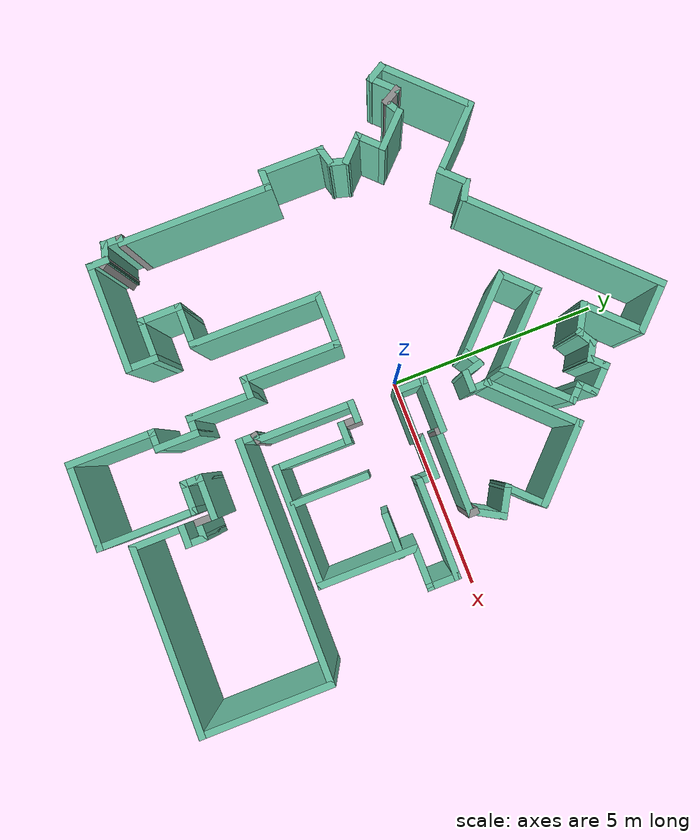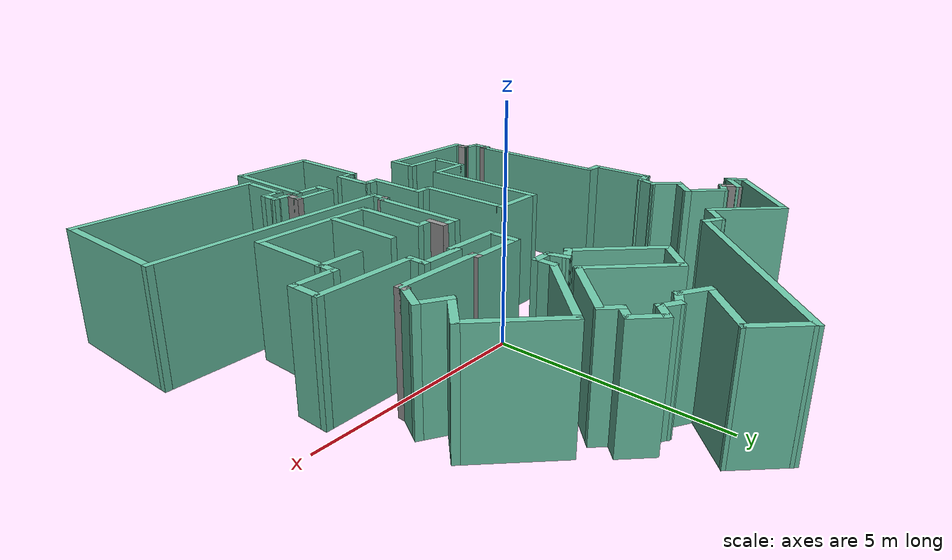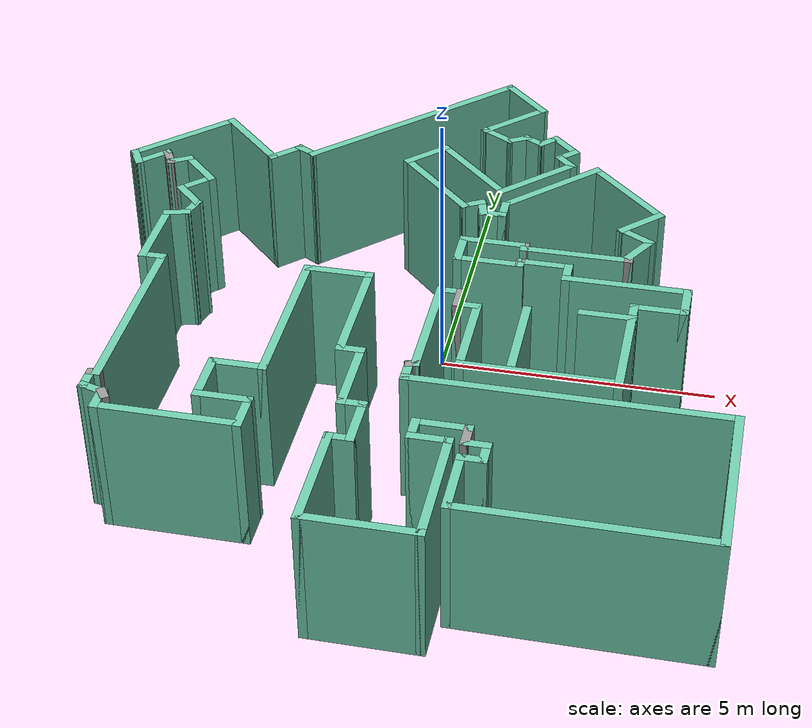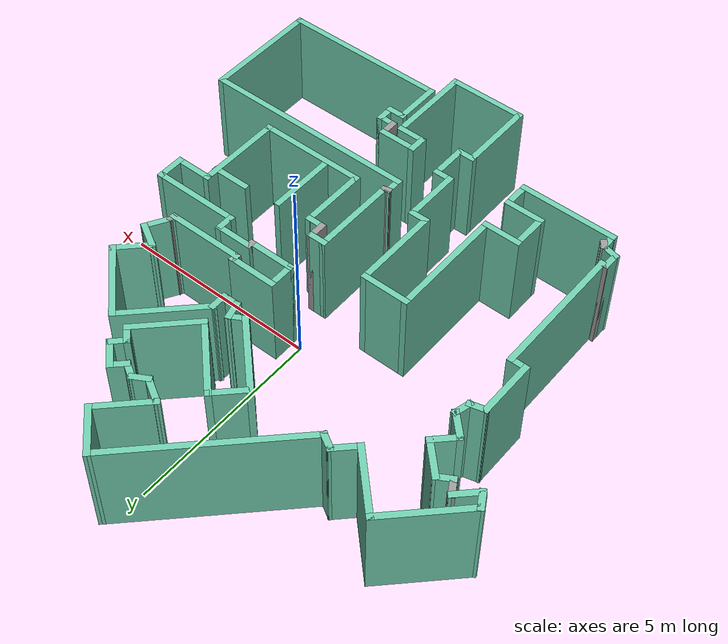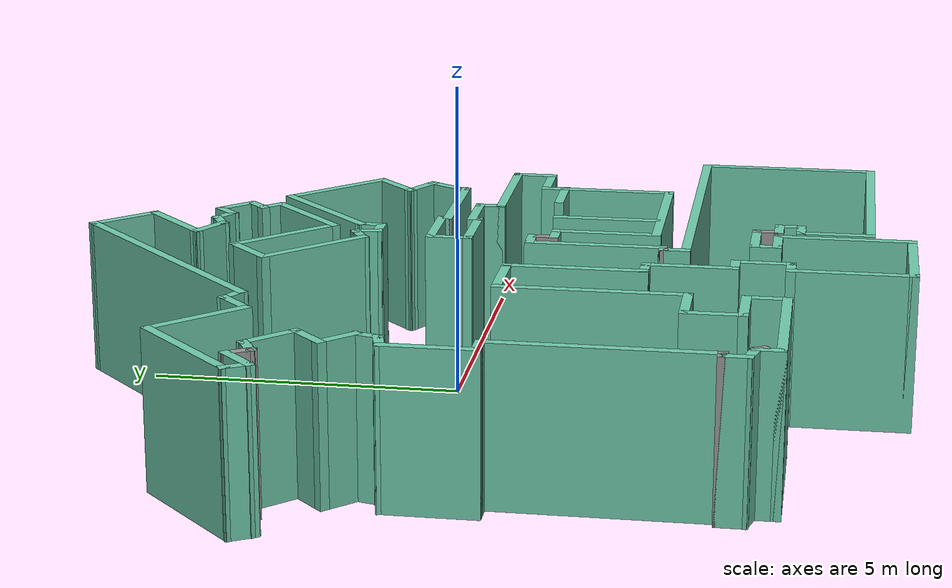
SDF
<sdf version="1.6">
 <model name="map_11">
  <pose>-0.481268 -0.534059 0 0 -0 0</pose>
  <link name="Wall_0">
   <collision name="Wall_0_Collision">
    <geometry><box><size>4.75 0.15 2.5</size></box></geometry>
    <pose>0 0 1.25 0 -0 0</pose>
   </collision>
   <visual name="Wall_0_Visual">
    <pose>0 0 1.25 0 -0 0</pose>
    <geometry><box><size>4.75 0.15 2.5</size></box></geometry>
    <material>
     <script><uri>file://media/materials/scripts/gazebo.material</uri><name>Gazebo/Grey</name></script>
     <ambient>0.435294 0.796078 0.67451 1</ambient>
    </material>
    <meta><layer>0</layer></meta>
   </visual>
   <pose>-0.933367 4.89876 0 0 -0 -2.35619</pose>
  </link>
  <link name="Wall_1">
   <collision name="Wall_1_Collision">
    <geometry><box><size>0.5 0.15 2.5</size></box></geometry>
    <pose>0 0 1.25 0 -0 0</pose>
   </collision>
   <visual name="Wall_1_Visual">
    <pose>0 0 1.25 0 -0 0</pose>
    <geometry><box><size>0.5 0.15 2.5</size></box></geometry>
    <material>
     <script><uri>file://media/materials/scripts/gazebo.material</uri><name>Gazebo/Grey</name></script>
     <ambient>0.435294 0.796078 0.67451 1</ambient>
    </material>
    <meta><layer>0</layer></meta>
   </visual>
   <pose>-2.71127 3.35991 0 0 -0 2.61799</pose>
  </link>
  <link name="Wall_10">
   <collision name="Wall_10_Collision">
    <geometry><box><size>1 0.15 2.5</size></box></geometry>
    <pose>0 0 1.25 0 -0 0</pose>
   </collision>
   <visual name="Wall_10_Visual">
    <pose>0 0 1.25 0 -0 0</pose>
    <geometry><box><size>1 0.15 2.5</size></box></geometry>
    <material>
     <script><uri>file://media/materials/scripts/gazebo.material</uri><name>Gazebo/Grey</name></script>
     <ambient>0.435294 0.796078 0.67451 1</ambient>
    </material>
    <meta><layer>0</layer></meta>
   </visual>
   <pose>-4.52549 2.36212 0 0 -0 -0.785398</pose>
  </link>
  <link name="Wall_100">
   <collision name="Wall_100_Collision">
    <geometry><box><size>1.25445 0.15 2.5</size></box></geometry>
    <pose>0 0 1.25 0 -0 0</pose>
   </collision>
   <visual name="Wall_100_Visual">
    <pose>0 0 1.25 0 -0 0</pose>
    <geometry><box><size>1.25445 0.15 2.5</size></box></geometry>
    <material>
     <script><uri>file://media/materials/scripts/gazebo.material</uri><name>Gazebo/Grey</name></script>
     <ambient>0.435294 0.796078 0.67451 1</ambient>
    </material>
    <meta><layer>0</layer></meta>
   </visual>
   <pose>1.07905 6.13026 0 0 -0 2.34496</pose>
  </link>
  <link name="Wall_102">
   <collision name="Wall_102_Collision">
    <geometry><box><size>1.75 0.15 2.5</size></box></geometry>
    <pose>0 0 1.25 0 -0 0</pose>
   </collision>
   <visual name="Wall_102_Visual">
    <pose>0 0 1.25 0 -0 0</pose>
    <geometry><box><size>1.75 0.15 2.5</size></box></geometry>
    <material>
     <script><uri>file://media/materials/scripts/gazebo.material</uri><name>Gazebo/Grey</name></script>
     <ambient>0.435294 0.796078 0.67451 1</ambient>
    </material>
    <meta><layer>0</layer></meta>
   </visual>
   <pose>2.21384 -1.64657 0 0 -0 1.5708</pose>
  </link>
  <link name="Wall_104">
   <collision name="Wall_104_Collision">
    <geometry><box><size>1 0.15 2.5</size></box></geometry>
    <pose>0 0 1.25 0 -0 0</pose>
   </collision>
   <visual name="Wall_104_Visual">
    <pose>0 0 1.25 0 -0 0</pose>
    <geometry><box><size>1 0.15 2.5</size></box></geometry>
    <material>
     <script><uri>file://media/materials/scripts/gazebo.material</uri><name>Gazebo/Grey</name></script>
     <ambient>0.435294 0.796078 0.67451 1</ambient>
    </material>
    <meta><layer>0</layer></meta>
   </visual>
   <pose>3.5727 -0.757031 0 0 -0 0</pose>
  </link>
  <link name="Wall_11">
   <collision name="Wall_11_Collision">
    <geometry><box><size>0.75 0.15 2.5</size></box></geometry>
    <pose>0 0 1.25 0 -0 0</pose>
   </collision>
   <visual name="Wall_11_Visual">
    <pose>0 0 1.25 0 -0 0</pose>
    <geometry><box><size>0.75 0.15 2.5</size></box></geometry>
    <material>
     <script><uri>file://media/materials/scripts/gazebo.material</uri><name>Gazebo/Grey</name></script>
     <ambient>0.435294 0.796078 0.67451 1</ambient>
    </material>
    <meta><layer>0</layer></meta>
   </visual>
   <pose>-4.4371 1.84947 0 0 -0 -2.35619</pose>
  </link>
  <link name="Wall_12">
   <collision name="Wall_12_Collision">
    <geometry><box><size>0.75 0.15 2.5</size></box></geometry>
    <pose>0 0 1.25 0 -0 0</pose>
   </collision>
   <visual name="Wall_12_Visual">
    <pose>0 0 1.25 0 -0 0</pose>
    <geometry><box><size>0.75 0.15 2.5</size></box></geometry>
    <material>
     <script><uri>file://media/materials/scripts/gazebo.material</uri><name>Gazebo/Grey</name></script>
     <ambient>0.435294 0.796078 0.67451 1</ambient>
    </material>
    <meta><layer>0</layer></meta>
   </visual>
   <pose>-4.4371 1.42521 0 0 -0 -0.785398</pose>
  </link>
  <link name="Wall_13">
   <collision name="Wall_13_Collision">
    <geometry><box><size>0.5 0.15 2.5</size></box></geometry>
    <pose>0 0 1.25 0 -0 0</pose>
   </collision>
   <visual name="Wall_13_Visual">
    <pose>0 0 1.25 0 -0 0</pose>
    <geometry><box><size>0.5 0.15 2.5</size></box></geometry>
    <material>
     <script><uri>file://media/materials/scripts/gazebo.material</uri><name>Gazebo/Grey</name></script>
     <ambient>0.435294 0.796078 0.67451 1</ambient>
    </material>
    <meta><layer>0</layer></meta>
   </visual>
   <pose>-4.27026 1.04404 0 0 -0 -1.8326</pose>
  </link>
  <link name="Wall_14">
   <collision name="Wall_14_Collision">
    <geometry><box><size>0.5 0.15 2.5</size></box></geometry>
    <pose>0 0 1.25 0 -0 0</pose>
   </collision>
   <visual name="Wall_14_Visual">
    <pose>0 0 1.25 0 -0 0</pose>
    <geometry><box><size>0.5 0.15 2.5</size></box></geometry>
    <material>
     <script><uri>file://media/materials/scripts/gazebo.material</uri><name>Gazebo/Grey</name></script>
     <ambient>0.435294 0.796078 0.67451 1</ambient>
    </material>
    <meta><layer>0</layer></meta>
   </visual>
   <pose>-4.48459 0.829708 0 0 -0 -2.87979</pose>
  </link>
  <link name="Wall_15">
   <collision name="Wall_15_Collision">
    <geometry><box><size>1.5 0.15 2.5</size></box></geometry>
    <pose>0 0 1.25 0 -0 0</pose>
   </collision>
   <visual name="Wall_15_Visual">
    <pose>0 0 1.25 0 -0 0</pose>
    <geometry><box><size>1.5 0.15 2.5</size></box></geometry>
    <material>
     <script><uri>file://media/materials/scripts/gazebo.material</uri><name>Gazebo/Grey</name></script>
     <ambient>0.435294 0.796078 0.67451 1</ambient>
    </material>
    <meta><layer>0</layer></meta>
   </visual>
   <pose>-4.65363 0.109414 0 0 -0 -1.5708</pose>
  </link>
  <link name="Wall_16">
   <collision name="Wall_16_Collision">
    <geometry><box><size>0.5 0.15 2.5</size></box></geometry>
    <pose>0 0 1.25 0 -0 0</pose>
   </collision>
   <visual name="Wall_16_Visual">
    <pose>0 0 1.25 0 -0 0</pose>
    <geometry><box><size>0.5 0.15 2.5</size></box></geometry>
    <material>
     <script><uri>file://media/materials/scripts/gazebo.material</uri><name>Gazebo/Grey</name></script>
     <ambient>0.435294 0.796078 0.67451 1</ambient>
    </material>
    <meta><layer>0</layer></meta>
   </visual>
   <pose>-4.47863 -0.565586 0 0 -0 0</pose>
  </link>
  <link name="Wall_17">
   <collision name="Wall_17_Collision">
    <geometry><box><size>3.5 0.15 2.5</size></box></geometry>
    <pose>0 0 1.25 0 -0 0</pose>
   </collision>
   <visual name="Wall_17_Visual">
    <pose>0 0 1.25 0 -0 0</pose>
    <geometry><box><size>3.5 0.15 2.5</size></box></geometry>
    <material>
     <script><uri>file://media/materials/scripts/gazebo.material</uri><name>Gazebo/Grey</name></script>
     <ambient>0.435294 0.796078 0.67451 1</ambient>
    </material>
    <meta><layer>0</layer></meta>
   </visual>
   <pose>-4.30363 -2.24059 0 0 -0 -1.5708</pose>
  </link>
  <link name="Wall_18">
   <collision name="Wall_18_Collision">
    <geometry><box><size>0.25 0.15 2.5</size></box></geometry>
    <pose>0 0 1.25 0 -0 0</pose>
   </collision>
   <visual name="Wall_18_Visual">
    <pose>0 0 1.25 0 -0 0</pose>
    <geometry><box><size>0.25 0.15 2.5</size></box></geometry>
    <material>
     <script><uri>file://media/materials/scripts/gazebo.material</uri><name>Gazebo/Grey</name></script>
     <ambient>1 1 1 1</ambient>
    </material>
    <meta><layer>0</layer></meta>
   </visual>
   <pose>-4.35363 -3.91559 0 0 -0 3.14159</pose>
  </link>
  <link name="Wall_19">
   <collision name="Wall_19_Collision">
    <geometry><box><size>0.5 0.15 2.5</size></box></geometry>
    <pose>0 0 1.25 0 -0 0</pose>
   </collision>
   <visual name="Wall_19_Visual">
    <pose>0 0 1.25 0 -0 0</pose>
    <geometry><box><size>0.5 0.15 2.5</size></box></geometry>
    <material>
     <script><uri>file://media/materials/scripts/gazebo.material</uri><name>Gazebo/Grey</name></script>
     <ambient>0.435294 0.796078 0.67451 1</ambient>
    </material>
    <meta><layer>0</layer></meta>
   </visual>
   <pose>-4.40363 -4.09059 0 0 -0 -1.5708</pose>
  </link>
  <link name="Wall_2">
   <collision name="Wall_2_Collision">
    <geometry><box><size>0.75 0.15 2.5</size></box></geometry>
    <pose>0 0 1.25 0 -0 0</pose>
   </collision>
   <visual name="Wall_2_Visual">
    <pose>0 0 1.25 0 -0 0</pose>
    <geometry><box><size>0.75 0.15 2.5</size></box></geometry>
    <material>
     <script><uri>file://media/materials/scripts/gazebo.material</uri><name>Gazebo/Grey</name></script>
     <ambient>0.435294 0.796078 0.67451 1</ambient>
    </material>
    <meta><layer>0</layer></meta>
   </visual>
   <pose>-3.07495 3.23528 0 0 -0 -2.35619</pose>
  </link>
  <link name="Wall_20">
   <collision name="Wall_20_Collision">
    <geometry><box><size>0.5 0.15 2.5</size></box></geometry>
    <pose>0 0 1.25 0 -0 0</pose>
   </collision>
   <visual name="Wall_20_Visual">
    <pose>0 0 1.25 0 -0 0</pose>
    <geometry><box><size>0.5 0.15 2.5</size></box></geometry>
    <material>
     <script><uri>file://media/materials/scripts/gazebo.material</uri><name>Gazebo/Grey</name></script>
     <ambient>0.435294 0.796078 0.67451 1</ambient>
    </material>
    <meta><layer>0</layer></meta>
   </visual>
   <pose>-4.23459 -4.31088 0 0 -0 -0.261799</pose>
  </link>
  <link name="Wall_21">
   <collision name="Wall_21_Collision">
    <geometry><box><size>0.271718 0.15 2.5</size></box></geometry>
    <pose>0 0 1.25 0 -0 0</pose>
   </collision>
   <visual name="Wall_21_Visual">
    <pose>0 0 1.25 0 -0 0</pose>
    <geometry><box><size>0.271718 0.15 2.5</size></box></geometry>
    <material>
     <script><uri>file://media/materials/scripts/gazebo.material</uri><name>Gazebo/Grey</name></script>
     <ambient>1 1 1 1</ambient>
    </material>
    <meta><layer>0</layer></meta>
   </visual>
   <pose>-4.03086 -4.40617 0 0 -0 -0.964164</pose>
  </link>
  <link name="Wall_27">
   <collision name="Wall_27_Collision">
    <geometry><box><size>0.5 0.15 2.5</size></box></geometry>
    <pose>0 0 1.25 0 -0 0</pose>
   </collision>
   <visual name="Wall_27_Visual">
    <pose>0 0 1.25 0 -0 0</pose>
    <geometry><box><size>0.5 0.15 2.5</size></box></geometry>
    <material>
     <script><uri>file://media/materials/scripts/gazebo.material</uri><name>Gazebo/Grey</name></script>
     <ambient>0.435294 0.796078 0.67451 1</ambient>
    </material>
    <meta><layer>0</layer></meta>
   </visual>
   <pose>-4.06555 -4.53117 0 0 -0 -1.5708</pose>
  </link>
  <link name="Wall_28">
   <collision name="Wall_28_Collision">
    <geometry><box><size>2.5 0.15 2.5</size></box></geometry>
    <pose>0 0 1.25 0 -0 0</pose>
   </collision>
   <visual name="Wall_28_Visual">
    <pose>0 0 1.25 0 -0 0</pose>
    <geometry><box><size>2.5 0.15 2.5</size></box></geometry>
    <material>
     <script><uri>file://media/materials/scripts/gazebo.material</uri><name>Gazebo/Grey</name></script>
     <ambient>0.435294 0.796078 0.67451 1</ambient>
    </material>
    <meta><layer>0</layer></meta>
   </visual>
   <pose>-2.89055 -4.70617 0 0 -0 0</pose>
  </link>
  <link name="Wall_29">
   <collision name="Wall_29_Collision">
    <geometry><box><size>0.75 0.15 2.5</size></box></geometry>
    <pose>0 0 1.25 0 -0 0</pose>
   </collision>
   <visual name="Wall_29_Visual">
    <pose>0 0 1.25 0 -0 0</pose>
    <geometry><box><size>0.75 0.15 2.5</size></box></geometry>
    <material>
     <script><uri>file://media/materials/scripts/gazebo.material</uri><name>Gazebo/Grey</name></script>
     <ambient>0.435294 0.796078 0.67451 1</ambient>
    </material>
    <meta><layer>0</layer></meta>
   </visual>
   <pose>-1.71555 -4.40617 0 0 -0 1.5708</pose>
  </link>
  <link name="Wall_3">
   <collision name="Wall_3_Collision">
    <geometry><box><size>1.75 0.15 2.5</size></box></geometry>
    <pose>0 0 1.25 0 -0 0</pose>
   </collision>
   <visual name="Wall_3_Visual">
    <pose>0 0 1.25 0 -0 0</pose>
    <geometry><box><size>1.75 0.15 2.5</size></box></geometry>
    <material>
     <script><uri>file://media/materials/scripts/gazebo.material</uri><name>Gazebo/Grey</name></script>
     <ambient>0.435294 0.796078 0.67451 1</ambient>
    </material>
    <meta><layer>0</layer></meta>
   </visual>
   <pose>-3.85277 3.58884 0 0 -0 2.35619</pose>
  </link>
  <link name="Wall_30">
   <collision name="Wall_30_Collision">
    <geometry><box><size>1 0.15 2.5</size></box></geometry>
    <pose>0 0 1.25 0 -0 0</pose>
   </collision>
   <visual name="Wall_30_Visual">
    <pose>0 0 1.25 0 -0 0</pose>
    <geometry><box><size>1 0.15 2.5</size></box></geometry>
    <material>
     <script><uri>file://media/materials/scripts/gazebo.material</uri><name>Gazebo/Grey</name></script>
     <ambient>0.435294 0.796078 0.67451 1</ambient>
    </material>
    <meta><layer>0</layer></meta>
   </visual>
   <pose>-2.14055 -4.10617 0 0 -0 3.14159</pose>
  </link>
  <link name="Wall_31">
   <collision name="Wall_31_Collision">
    <geometry><box><size>1 0.15 2.5</size></box></geometry>
    <pose>0 0 1.25 0 -0 0</pose>
   </collision>
   <visual name="Wall_31_Visual">
    <pose>0 0 1.25 0 -0 0</pose>
    <geometry><box><size>1 0.15 2.5</size></box></geometry>
    <material>
     <script><uri>file://media/materials/scripts/gazebo.material</uri><name>Gazebo/Grey</name></script>
     <ambient>0.435294 0.796078 0.67451 1</ambient>
    </material>
    <meta><layer>0</layer></meta>
   </visual>
   <pose>-2.56555 -3.68117 0 0 -0 1.5708</pose>
  </link>
  <link name="Wall_32">
   <collision name="Wall_32_Collision">
    <geometry><box><size>1 0.15 2.5</size></box></geometry>
    <pose>0 0 1.25 0 -0 0</pose>
   </collision>
   <visual name="Wall_32_Visual">
    <pose>0 0 1.25 0 -0 0</pose>
    <geometry><box><size>1 0.15 2.5</size></box></geometry>
    <material>
     <script><uri>file://media/materials/scripts/gazebo.material</uri><name>Gazebo/Grey</name></script>
     <ambient>0.435294 0.796078 0.67451 1</ambient>
    </material>
    <meta><layer>0</layer></meta>
   </visual>
   <pose>-2.14055 -3.25617 0 0 -0 0</pose>
  </link>
  <link name="Wall_33">
   <collision name="Wall_33_Collision">
    <geometry><box><size>3 0.15 2.5</size></box></geometry>
    <pose>0 0 1.25 0 -0 0</pose>
   </collision>
   <visual name="Wall_33_Visual">
    <pose>0 0 1.25 0 -0 0</pose>
    <geometry><box><size>3 0.15 2.5</size></box></geometry>
    <material>
     <script><uri>file://media/materials/scripts/gazebo.material</uri><name>Gazebo/Grey</name></script>
     <ambient>0.435294 0.796078 0.67451 1</ambient>
    </material>
    <meta><layer>0</layer></meta>
   </visual>
   <pose>-1.71555 -1.83117 0 0 -0 1.5708</pose>
  </link>
  <link name="Wall_34">
   <collision name="Wall_34_Collision">
    <geometry><box><size>1.25 0.15 2.5</size></box></geometry>
    <pose>0 0 1.25 0 -0 0</pose>
   </collision>
   <visual name="Wall_34_Visual">
    <pose>0 0 1.25 0 -0 0</pose>
    <geometry><box><size>1.25 0.15 2.5</size></box></geometry>
    <material>
     <script><uri>file://media/materials/scripts/gazebo.material</uri><name>Gazebo/Grey</name></script>
     <ambient>0.435294 0.796078 0.67451 1</ambient>
    </material>
    <meta><layer>0</layer></meta>
   </visual>
   <pose>-1.16555 -0.406172 0 0 -0 0</pose>
  </link>
  <link name="Wall_35">
   <collision name="Wall_35_Collision">
    <geometry><box><size>2.25 0.15 2.5</size></box></geometry>
    <pose>0 0 1.25 0 -0 0</pose>
   </collision>
   <visual name="Wall_35_Visual">
    <pose>0 0 1.25 0 -0 0</pose>
    <geometry><box><size>2.25 0.15 2.5</size></box></geometry>
    <material>
     <script><uri>file://media/materials/scripts/gazebo.material</uri><name>Gazebo/Grey</name></script>
     <ambient>0.435294 0.796078 0.67451 1</ambient>
    </material>
    <meta><layer>0</layer></meta>
   </visual>
   <pose>-0.615553 -1.45617 0 0 -0 -1.5708</pose>
  </link>
  <link name="Wall_36">
   <collision name="Wall_36_Collision">
    <geometry><box><size>0.5 0.15 2.5</size></box></geometry>
    <pose>0 0 1.25 0 -0 0</pose>
   </collision>
   <visual name="Wall_36_Visual">
    <pose>0 0 1.25 0 -0 0</pose>
    <geometry><box><size>0.5 0.15 2.5</size></box></geometry>
    <material>
     <script><uri>file://media/materials/scripts/gazebo.material</uri><name>Gazebo/Grey</name></script>
     <ambient>0.435294 0.796078 0.67451 1</ambient>
    </material>
    <meta><layer>0</layer></meta>
   </visual>
   <pose>-0.440553 -2.50617 0 0 -0 0</pose>
  </link>
  <link name="Wall_37">
   <collision name="Wall_37_Collision">
    <geometry><box><size>1.5 0.15 2.5</size></box></geometry>
    <pose>0 0 1.25 0 -0 0</pose>
   </collision>
   <visual name="Wall_37_Visual">
    <pose>0 0 1.25 0 -0 0</pose>
    <geometry><box><size>1.5 0.15 2.5</size></box></geometry>
    <material>
     <script><uri>file://media/materials/scripts/gazebo.material</uri><name>Gazebo/Grey</name></script>
     <ambient>0.435294 0.796078 0.67451 1</ambient>
    </material>
    <meta><layer>0</layer></meta>
   </visual>
   <pose>-0.265553 -3.18117 0 0 -0 -1.5708</pose>
  </link>
  <link name="Wall_38">
   <collision name="Wall_38_Collision">
    <geometry><box><size>0.5 0.15 2.5</size></box></geometry>
    <pose>0 0 1.25 0 -0 0</pose>
   </collision>
   <visual name="Wall_38_Visual">
    <pose>0 0 1.25 0 -0 0</pose>
    <geometry><box><size>0.5 0.15 2.5</size></box></geometry>
    <material>
     <script><uri>file://media/materials/scripts/gazebo.material</uri><name>Gazebo/Grey</name></script>
     <ambient>0.435294 0.796078 0.67451 1</ambient>
    </material>
    <meta><layer>0</layer></meta>
   </visual>
   <pose>-0.090554 -3.85617 0 0 -0 0</pose>
  </link>
  <link name="Wall_39">
   <collision name="Wall_39_Collision">
    <geometry><box><size>1 0.15 2.5</size></box></geometry>
    <pose>0 0 1.25 0 -0 0</pose>
   </collision>
   <visual name="Wall_39_Visual">
    <pose>0 0 1.25 0 -0 0</pose>
    <geometry><box><size>1 0.15 2.5</size></box></geometry>
    <material>
     <script><uri>file://media/materials/scripts/gazebo.material</uri><name>Gazebo/Grey</name></script>
     <ambient>0.435294 0.796078 0.67451 1</ambient>
    </material>
    <meta><layer>0</layer></meta>
   </visual>
   <pose>0.084447 -4.28117 0 0 -0 -1.5708</pose>
  </link>
  <link name="Wall_4">
   <collision name="Wall_4_Collision">
    <geometry><box><size>2.25 0.15 2.5</size></box></geometry>
    <pose>0 0 1.25 0 -0 0</pose>
   </collision>
   <visual name="Wall_4_Visual">
    <pose>0 0 1.25 0 -0 0</pose>
    <geometry><box><size>2.25 0.15 2.5</size></box></geometry>
    <material>
     <script><uri>file://media/materials/scripts/gazebo.material</uri><name>Gazebo/Grey</name></script>
     <ambient>0.435294 0.796078 0.67451 1</ambient>
    </material>
    <meta><layer>0</layer></meta>
   </visual>
   <pose>-5.16092 3.41206 0 0 -0 -2.35619</pose>
  </link>
  <link name="Wall_40">
   <collision name="Wall_40_Collision">
    <geometry><box><size>0.5 0.15 2.5</size></box></geometry>
    <pose>0 0 1.25 0 -0 0</pose>
   </collision>
   <visual name="Wall_40_Visual">
    <pose>0 0 1.25 0 -0 0</pose>
    <geometry><box><size>0.5 0.15 2.5</size></box></geometry>
    <material>
     <script><uri>file://media/materials/scripts/gazebo.material</uri><name>Gazebo/Grey</name></script>
     <ambient>0.435294 0.796078 0.67451 1</ambient>
    </material>
    <meta><layer>0</layer></meta>
   </visual>
   <pose>-0.090554 -4.70617 0 0 -0 3.14159</pose>
  </link>
  <link name="Wall_41">
   <collision name="Wall_41_Collision">
    <geometry><box><size>2 0.15 2.5</size></box></geometry>
    <pose>0 0 1.25 0 -0 0</pose>
   </collision>
   <visual name="Wall_41_Visual">
    <pose>0 0 1.25 0 -0 0</pose>
    <geometry><box><size>2 0.15 2.5</size></box></geometry>
    <material>
     <script><uri>file://media/materials/scripts/gazebo.material</uri><name>Gazebo/Grey</name></script>
     <ambient>0.435294 0.796078 0.67451 1</ambient>
    </material>
    <meta><layer>0</layer></meta>
   </visual>
   <pose>-0.265553 -5.63117 0 0 -0 -1.5708</pose>
  </link>
  <link name="Wall_42">
   <collision name="Wall_42_Collision">
    <geometry><box><size>2 0.15 2.5</size></box></geometry>
    <pose>0 0 1.25 0 -0 0</pose>
   </collision>
   <visual name="Wall_42_Visual">
    <pose>0 0 1.25 0 -0 0</pose>
    <geometry><box><size>2 0.15 2.5</size></box></geometry>
    <material>
     <script><uri>file://media/materials/scripts/gazebo.material</uri><name>Gazebo/Grey</name></script>
     <ambient>0.435294 0.796078 0.67451 1</ambient>
    </material>
    <meta><layer>0</layer></meta>
   </visual>
   <pose>0.659447 -6.55617 0 0 -0 0</pose>
  </link>
  <link name="Wall_43">
   <collision name="Wall_43_Collision">
    <geometry><box><size>2.25 0.15 2.5</size></box></geometry>
    <pose>0 0 1.25 0 -0 0</pose>
   </collision>
   <visual name="Wall_43_Visual">
    <pose>0 0 1.25 0 -0 0</pose>
    <geometry><box><size>2.25 0.15 2.5</size></box></geometry>
    <material>
     <script><uri>file://media/materials/scripts/gazebo.material</uri><name>Gazebo/Grey</name></script>
     <ambient>0.435294 0.796078 0.67451 1</ambient>
    </material>
    <meta><layer>0</layer></meta>
   </visual>
   <pose>1.58445 -5.50617 0 0 -0 1.5708</pose>
  </link>
  <link name="Wall_44">
   <collision name="Wall_44_Collision">
    <geometry><box><size>0.75 0.15 2.5</size></box></geometry>
    <pose>0 0 1.25 0 -0 0</pose>
   </collision>
   <visual name="Wall_44_Visual">
    <pose>0 0 1.25 0 -0 0</pose>
    <geometry><box><size>0.75 0.15 2.5</size></box></geometry>
    <material>
     <script><uri>file://media/materials/scripts/gazebo.material</uri><name>Gazebo/Grey</name></script>
     <ambient>0.435294 0.796078 0.67451 1</ambient>
    </material>
    <meta><layer>0</layer></meta>
   </visual>
   <pose>1.28445 -4.45617 0 0 -0 3.14159</pose>
  </link>
  <link name="Wall_45">
   <collision name="Wall_45_Collision">
    <geometry><box><size>0.5 0.15 2.5</size></box></geometry>
    <pose>0 0 1.25 0 -0 0</pose>
   </collision>
   <visual name="Wall_45_Visual">
    <pose>0 0 1.25 0 -0 0</pose>
    <geometry><box><size>0.5 0.15 2.5</size></box></geometry>
    <material>
     <script><uri>file://media/materials/scripts/gazebo.material</uri><name>Gazebo/Grey</name></script>
     <ambient>0.435294 0.796078 0.67451 1</ambient>
    </material>
    <meta><layer>0</layer></meta>
   </visual>
   <pose>0.984447 -4.28117 0 0 -0 1.5708</pose>
  </link>
  <link name="Wall_46">
   <collision name="Wall_46_Collision">
    <geometry><box><size>1 0.15 2.5</size></box></geometry>
    <pose>0 0 1.25 0 -0 0</pose>
   </collision>
   <visual name="Wall_46_Visual">
    <pose>0 0 1.25 0 -0 0</pose>
    <geometry><box><size>1 0.15 2.5</size></box></geometry>
    <material>
     <script><uri>file://media/materials/scripts/gazebo.material</uri><name>Gazebo/Grey</name></script>
     <ambient>0.435294 0.796078 0.67451 1</ambient>
    </material>
    <meta><layer>0</layer></meta>
   </visual>
   <pose>1.40945 -4.10617 0 0 -0 0</pose>
  </link>
  <link name="Wall_47">
   <collision name="Wall_47_Collision">
    <geometry><box><size>0.5 0.15 2.5</size></box></geometry>
    <pose>0 0 1.25 0 -0 0</pose>
   </collision>
   <visual name="Wall_47_Visual">
    <pose>0 0 1.25 0 -0 0</pose>
    <geometry><box><size>0.5 0.15 2.5</size></box></geometry>
    <material>
     <script><uri>file://media/materials/scripts/gazebo.material</uri><name>Gazebo/Grey</name></script>
     <ambient>1 1 1 1</ambient>
    </material>
    <meta><layer>0</layer></meta>
   </visual>
   <pose>1.83445 -4.28117 0 0 -0 -1.5708</pose>
  </link>
  <link name="Wall_48">
   <collision name="Wall_48_Collision">
    <geometry><box><size>0.5 0.15 2.5</size></box></geometry>
    <pose>0 0 1.25 0 -0 0</pose>
   </collision>
   <visual name="Wall_48_Visual">
    <pose>0 0 1.25 0 -0 0</pose>
    <geometry><box><size>0.5 0.15 2.5</size></box></geometry>
    <material>
     <script><uri>file://media/materials/scripts/gazebo.material</uri><name>Gazebo/Grey</name></script>
     <ambient>0.435294 0.796078 0.67451 1</ambient>
    </material>
    <meta><layer>0</layer></meta>
   </visual>
   <pose>2.00945 -4.45617 0 0 -0 0</pose>
  </link>
  <link name="Wall_49">
   <collision name="Wall_49_Collision">
    <geometry><box><size>0.5 0.15 2.5</size></box></geometry>
    <pose>0 0 1.25 0 -0 0</pose>
   </collision>
   <visual name="Wall_49_Visual">
    <pose>0 0 1.25 0 -0 0</pose>
    <geometry><box><size>0.5 0.15 2.5</size></box></geometry>
    <material>
     <script><uri>file://media/materials/scripts/gazebo.material</uri><name>Gazebo/Grey</name></script>
     <ambient>0.435294 0.796078 0.67451 1</ambient>
    </material>
    <meta><layer>0</layer></meta>
   </visual>
   <pose>2.18445 -4.63117 0 0 -0 -1.5708</pose>
  </link>
  <link name="Wall_5">
   <collision name="Wall_5_Collision">
    <geometry><box><size>0.5 0.15 2.5</size></box></geometry>
    <pose>0 0 1.25 0 -0 0</pose>
   </collision>
   <visual name="Wall_5_Visual">
    <pose>0 0 1.25 0 -0 0</pose>
    <geometry><box><size>0.5 0.15 2.5</size></box></geometry>
    <material>
     <script><uri>file://media/materials/scripts/gazebo.material</uri><name>Gazebo/Grey</name></script>
     <ambient>0.435294 0.796078 0.67451 1</ambient>
    </material>
    <meta><layer>0</layer></meta>
   </visual>
   <pose>-5.81588 2.51804 0 0 -0 -1.0472</pose>
  </link>
  <link name="Wall_50">
   <collision name="Wall_50_Collision">
    <geometry><box><size>0.5 0.15 2.5</size></box></geometry>
    <pose>0 0 1.25 0 -0 0</pose>
   </collision>
   <visual name="Wall_50_Visual">
    <pose>0 0 1.25 0 -0 0</pose>
    <geometry><box><size>0.5 0.15 2.5</size></box></geometry>
    <material>
     <script><uri>file://media/materials/scripts/gazebo.material</uri><name>Gazebo/Grey</name></script>
     <ambient>0.435294 0.796078 0.67451 1</ambient>
    </material>
    <meta><layer>0</layer></meta>
   </visual>
   <pose>2.00945 -4.80617 0 0 -0 3.14159</pose>
  </link>
  <link name="Wall_51">
   <collision name="Wall_51_Collision">
    <geometry><box><size>1.25 0.15 2.5</size></box></geometry>
    <pose>0 0 1.25 0 -0 0</pose>
   </collision>
   <visual name="Wall_51_Visual">
    <pose>0 0 1.25 0 -0 0</pose>
    <geometry><box><size>1.25 0.15 2.5</size></box></geometry>
    <material>
     <script><uri>file://media/materials/scripts/gazebo.material</uri><name>Gazebo/Grey</name></script>
     <ambient>0.435294 0.796078 0.67451 1</ambient>
    </material>
    <meta><layer>0</layer></meta>
   </visual>
   <pose>1.83445 -5.35617 0 0 -0 -1.5708</pose>
  </link>
  <link name="Wall_52">
   <collision name="Wall_52_Collision">
    <geometry><box><size>4.25 0.15 2.5</size></box></geometry>
    <pose>0 0 1.25 0 -0 0</pose>
   </collision>
   <visual name="Wall_52_Visual">
    <pose>0 0 1.25 0 -0 0</pose>
    <geometry><box><size>4.25 0.15 2.5</size></box></geometry>
    <material>
     <script><uri>file://media/materials/scripts/gazebo.material</uri><name>Gazebo/Grey</name></script>
     <ambient>0.435294 0.796078 0.67451 1</ambient>
    </material>
    <meta><layer>0</layer></meta>
   </visual>
   <pose>3.88445 -5.90617 0 0 -0 0</pose>
  </link>
  <link name="Wall_53">
   <collision name="Wall_53_Collision">
    <geometry><box><size>3 0.15 2.5</size></box></geometry>
    <pose>0 0 1.25 0 -0 0</pose>
   </collision>
   <visual name="Wall_53_Visual">
    <pose>0 0 1.25 0 -0 0</pose>
    <geometry><box><size>3 0.15 2.5</size></box></geometry>
    <material>
     <script><uri>file://media/materials/scripts/gazebo.material</uri><name>Gazebo/Grey</name></script>
     <ambient>0.435294 0.796078 0.67451 1</ambient>
    </material>
    <meta><layer>0</layer></meta>
   </visual>
   <pose>5.93445 -4.48117 0 0 -0 1.5708</pose>
  </link>
  <link name="Wall_54">
   <collision name="Wall_54_Collision">
    <geometry><box><size>5.5 0.15 2.5</size></box></geometry>
    <pose>0 0 1.25 0 -0 0</pose>
   </collision>
   <visual name="Wall_54_Visual">
    <pose>0 0 1.25 0 -0 0</pose>
    <geometry><box><size>5.5 0.15 2.5</size></box></geometry>
    <material>
     <script><uri>file://media/materials/scripts/gazebo.material</uri><name>Gazebo/Grey</name></script>
     <ambient>0.435294 0.796078 0.67451 1</ambient>
    </material>
    <meta><layer>0</layer></meta>
   </visual>
   <pose>3.25945 -3.05617 0 0 -0 3.14159</pose>
  </link>
  <link name="Wall_55">
   <collision name="Wall_55_Collision">
    <geometry><box><size>0.5 0.15 2.5</size></box></geometry>
    <pose>0 0 1.25 0 -0 0</pose>
   </collision>
   <visual name="Wall_55_Visual">
    <pose>0 0 1.25 0 -0 0</pose>
    <geometry><box><size>0.5 0.15 2.5</size></box></geometry>
    <material>
     <script><uri>file://media/materials/scripts/gazebo.material</uri><name>Gazebo/Grey</name></script>
     <ambient>0.435294 0.796078 0.67451 1</ambient>
    </material>
    <meta><layer>0</layer></meta>
   </visual>
   <pose>0.584447 -2.88117 0 0 -0 1.5708</pose>
  </link>
  <link name="Wall_56">
   <collision name="Wall_56_Collision">
    <geometry><box><size>0.25 0.15 2.5</size></box></geometry>
    <pose>0 0 1.25 0 -0 0</pose>
   </collision>
   <visual name="Wall_56_Visual">
    <pose>0 0 1.25 0 -0 0</pose>
    <geometry><box><size>0.25 0.15 2.5</size></box></geometry>
    <material>
     <script><uri>file://media/materials/scripts/gazebo.material</uri><name>Gazebo/Grey</name></script>
     <ambient>1 1 1 1</ambient>
    </material>
    <meta><layer>0</layer></meta>
   </visual>
   <pose>0.632743 -2.69323 0 0 -0 0.261799</pose>
  </link>
  <link name="Wall_57">
   <collision name="Wall_57_Collision">
    <geometry><box><size>2.25 0.15 2.5</size></box></geometry>
    <pose>0 0 1.25 0 -0 0</pose>
   </collision>
   <visual name="Wall_57_Visual">
    <pose>0 0 1.25 0 -0 0</pose>
    <geometry><box><size>2.25 0.15 2.5</size></box></geometry>
    <material>
     <script><uri>file://media/materials/scripts/gazebo.material</uri><name>Gazebo/Grey</name></script>
     <ambient>0.435294 0.796078 0.67451 1</ambient>
    </material>
    <meta><layer>0</layer></meta>
   </visual>
   <pose>0.681039 -1.63029 0 0 -0 1.5708</pose>
  </link>
  <link name="Wall_58">
   <collision name="Wall_58_Collision">
    <geometry><box><size>0.5 0.15 2.5</size></box></geometry>
    <pose>0 0 1.25 0 -0 0</pose>
   </collision>
   <visual name="Wall_58_Visual">
    <pose>0 0 1.25 0 -0 0</pose>
    <geometry><box><size>0.5 0.15 2.5</size></box></geometry>
    <material>
     <script><uri>file://media/materials/scripts/gazebo.material</uri><name>Gazebo/Grey</name></script>
     <ambient>0.435294 0.796078 0.67451 1</ambient>
    </material>
    <meta><layer>0</layer></meta>
   </visual>
   <pose>0.856039 -0.580291 0 0 -0 0</pose>
  </link>
  <link name="Wall_59">
   <collision name="Wall_59_Collision">
    <geometry><box><size>0.5 0.15 2.5</size></box></geometry>
    <pose>0 0 1.25 0 -0 0</pose>
   </collision>
   <visual name="Wall_59_Visual">
    <pose>0 0 1.25 0 -0 0</pose>
    <geometry><box><size>0.5 0.15 2.5</size></box></geometry>
    <material>
     <script><uri>file://media/materials/scripts/gazebo.material</uri><name>Gazebo/Grey</name></script>
     <ambient>1 1 1 1</ambient>
    </material>
    <meta><layer>0</layer></meta>
   </visual>
   <pose>1.03104 -0.755291 0 0 -0 -1.5708</pose>
  </link>
  <link name="Wall_6">
   <collision name="Wall_6_Collision">
    <geometry><box><size>0.75 0.15 2.5</size></box></geometry>
    <pose>0 0 1.25 0 -0 0</pose>
   </collision>
   <visual name="Wall_6_Visual">
    <pose>0 0 1.25 0 -0 0</pose>
    <geometry><box><size>0.75 0.15 2.5</size></box></geometry>
    <material>
     <script><uri>file://media/materials/scripts/gazebo.material</uri><name>Gazebo/Grey</name></script>
     <ambient>0.435294 0.796078 0.67451 1</ambient>
    </material>
    <meta><layer>0</layer></meta>
   </visual>
   <pose>-5.51625 2.57862 0 0 -0 0.785398</pose>
  </link>
  <link name="Wall_60">
   <collision name="Wall_60_Collision">
    <geometry><box><size>0.5 0.15 2.5</size></box></geometry>
    <pose>0 0 1.25 0 -0 0</pose>
   </collision>
   <visual name="Wall_60_Visual">
    <pose>0 0 1.25 0 -0 0</pose>
    <geometry><box><size>0.5 0.15 2.5</size></box></geometry>
    <material>
     <script><uri>file://media/materials/scripts/gazebo.material</uri><name>Gazebo/Grey</name></script>
     <ambient>0.435294 0.796078 0.67451 1</ambient>
    </material>
    <meta><layer>0</layer></meta>
   </visual>
   <pose>1.20604 -0.930291 0 0 -0 0</pose>
  </link>
  <link name="Wall_61">
   <collision name="Wall_61_Collision">
    <geometry><box><size>1.75 0.15 2.5</size></box></geometry>
    <pose>0 0 1.25 0 -0 0</pose>
   </collision>
   <visual name="Wall_61_Visual">
    <pose>0 0 1.25 0 -0 0</pose>
    <geometry><box><size>1.75 0.15 2.5</size></box></geometry>
    <material>
     <script><uri>file://media/materials/scripts/gazebo.material</uri><name>Gazebo/Grey</name></script>
     <ambient>0.435294 0.796078 0.67451 1</ambient>
    </material>
    <meta><layer>0</layer></meta>
   </visual>
   <pose>1.38104 -1.73029 0 0 -0 -1.5708</pose>
  </link>
  <link name="Wall_62">
   <collision name="Wall_62_Collision">
    <geometry><box><size>2.75 0.15 2.5</size></box></geometry>
    <pose>0 0 1.25 0 -0 0</pose>
   </collision>
   <visual name="Wall_62_Visual">
    <pose>0 0 1.25 0 -0 0</pose>
    <geometry><box><size>2.75 0.15 2.5</size></box></geometry>
    <material>
     <script><uri>file://media/materials/scripts/gazebo.material</uri><name>Gazebo/Grey</name></script>
     <ambient>0.435294 0.796078 0.67451 1</ambient>
    </material>
    <meta><layer>0</layer></meta>
   </visual>
   <pose>2.68104 -2.53029 0 0 -0 0</pose>
  </link>
  <link name="Wall_63">
   <collision name="Wall_63_Collision">
    <geometry><box><size>2.25 0.15 2.5</size></box></geometry>
    <pose>0 0 1.25 0 -0 0</pose>
   </collision>
   <visual name="Wall_63_Visual">
    <pose>0 0 1.25 0 -0 0</pose>
    <geometry><box><size>2.25 0.15 2.5</size></box></geometry>
    <material>
     <script><uri>file://media/materials/scripts/gazebo.material</uri><name>Gazebo/Grey</name></script>
     <ambient>0.435294 0.796078 0.67451 1</ambient>
    </material>
    <meta><layer>0</layer></meta>
   </visual>
   <pose>3.98104 -1.48029 0 0 -0 1.5708</pose>
  </link>
  <link name="Wall_64">
   <collision name="Wall_64_Collision">
    <geometry><box><size>1 0.15 2.5</size></box></geometry>
    <pose>0 0 1.25 0 -0 0</pose>
   </collision>
   <visual name="Wall_64_Visual">
    <pose>0 0 1.25 0 -0 0</pose>
    <geometry><box><size>1 0.15 2.5</size></box></geometry>
    <material>
     <script><uri>file://media/materials/scripts/gazebo.material</uri><name>Gazebo/Grey</name></script>
     <ambient>0.435294 0.796078 0.67451 1</ambient>
    </material>
    <meta><layer>0</layer></meta>
   </visual>
   <pose>4.40604 -0.430291 0 0 -0 0</pose>
  </link>
  <link name="Wall_65">
   <collision name="Wall_65_Collision">
    <geometry><box><size>0.75 0.15 2.5</size></box></geometry>
    <pose>0 0 1.25 0 -0 0</pose>
   </collision>
   <visual name="Wall_65_Visual">
    <pose>0 0 1.25 0 -0 0</pose>
    <geometry><box><size>0.75 0.15 2.5</size></box></geometry>
    <material>
     <script><uri>file://media/materials/scripts/gazebo.material</uri><name>Gazebo/Grey</name></script>
     <ambient>0.435294 0.796078 0.67451 1</ambient>
    </material>
    <meta><layer>0</layer></meta>
   </visual>
   <pose>4.83104 -0.130291 0 0 -0 1.5708</pose>
  </link>
  <link name="Wall_66">
   <collision name="Wall_66_Collision">
    <geometry><box><size>2.25 0.15 2.5</size></box></geometry>
    <pose>0 0 1.25 0 -0 0</pose>
   </collision>
   <visual name="Wall_66_Visual">
    <pose>0 0 1.25 0 -0 0</pose>
    <geometry><box><size>2.25 0.15 2.5</size></box></geometry>
    <material>
     <script><uri>file://media/materials/scripts/gazebo.material</uri><name>Gazebo/Grey</name></script>
     <ambient>0.435294 0.796078 0.67451 1</ambient>
    </material>
    <meta><layer>0</layer></meta>
   </visual>
   <pose>3.78104 0.169709 0 0 -0 3.14159</pose>
  </link>
  <link name="Wall_67">
   <collision name="Wall_67_Collision">
    <geometry><box><size>0.5 0.15 2.5</size></box></geometry>
    <pose>0 0 1.25 0 -0 0</pose>
   </collision>
   <visual name="Wall_67_Visual">
    <pose>0 0 1.25 0 -0 0</pose>
    <geometry><box><size>0.5 0.15 2.5</size></box></geometry>
    <material>
     <script><uri>file://media/materials/scripts/gazebo.material</uri><name>Gazebo/Grey</name></script>
     <ambient>0.435294 0.796078 0.67451 1</ambient>
    </material>
    <meta><layer>0</layer></meta>
   </visual>
   <pose>2.73104 0.344709 0 0 -0 1.5708</pose>
  </link>
  <link name="Wall_68">
   <collision name="Wall_68_Collision">
    <geometry><box><size>1 0.15 2.5</size></box></geometry>
    <pose>0 0 1.25 0 -0 0</pose>
   </collision>
   <visual name="Wall_68_Visual">
    <pose>0 0 1.25 0 -0 0</pose>
    <geometry><box><size>1 0.15 2.5</size></box></geometry>
    <material>
     <script><uri>file://media/materials/scripts/gazebo.material</uri><name>Gazebo/Grey</name></script>
     <ambient>0.435294 0.796078 0.67451 1</ambient>
    </material>
    <meta><layer>0</layer></meta>
   </visual>
   <pose>2.30604 0.519709 0 0 -0 3.14159</pose>
  </link>
  <link name="Wall_69">
   <collision name="Wall_69_Collision">
    <geometry><box><size>0.25 0.15 2.5</size></box></geometry>
    <pose>0 0 1.25 0 -0 0</pose>
   </collision>
   <visual name="Wall_69_Visual">
    <pose>0 0 1.25 0 -0 0</pose>
    <geometry><box><size>0.25 0.15 2.5</size></box></geometry>
    <material>
     <script><uri>file://media/materials/scripts/gazebo.material</uri><name>Gazebo/Grey</name></script>
     <ambient>1 1 1 1</ambient>
    </material>
    <meta><layer>0</layer></meta>
   </visual>
   <pose>1.88104 0.469709 0 0 -0 -1.5708</pose>
  </link>
  <link name="Wall_7">
   <collision name="Wall_7_Collision">
    <geometry><box><size>0.5 0.15 2.5</size></box></geometry>
    <pose>0 0 1.25 0 -0 0</pose>
   </collision>
   <visual name="Wall_7_Visual">
    <pose>0 0 1.25 0 -0 0</pose>
    <geometry><box><size>0.5 0.15 2.5</size></box></geometry>
    <material>
     <script><uri>file://media/materials/scripts/gazebo.material</uri><name>Gazebo/Grey</name></script>
     <ambient>1 1 1 1</ambient>
    </material>
    <meta><layer>0</layer></meta>
   </visual>
   <pose>-5.21662 2.6392 0 0 -0 -1.0472</pose>
  </link>
  <link name="Wall_70">
   <collision name="Wall_70_Collision">
    <geometry><box><size>1.25 0.15 2.5</size></box></geometry>
    <pose>0 0 1.25 0 -0 0</pose>
   </collision>
   <visual name="Wall_70_Visual">
    <pose>0 0 1.25 0 -0 0</pose>
    <geometry><box><size>1.25 0.15 2.5</size></box></geometry>
    <material>
     <script><uri>file://media/materials/scripts/gazebo.material</uri><name>Gazebo/Grey</name></script>
     <ambient>0.435294 0.796078 0.67451 1</ambient>
    </material>
    <meta><layer>0</layer></meta>
   </visual>
   <pose>1.33104 0.419709 0 0 -0 3.14159</pose>
  </link>
  <link name="Wall_71">
   <collision name="Wall_71_Collision">
    <geometry><box><size>0.75 0.15 2.5</size></box></geometry>
    <pose>0 0 1.25 0 -0 0</pose>
   </collision>
   <visual name="Wall_71_Visual">
    <pose>0 0 1.25 0 -0 0</pose>
    <geometry><box><size>0.75 0.15 2.5</size></box></geometry>
    <material>
     <script><uri>file://media/materials/scripts/gazebo.material</uri><name>Gazebo/Grey</name></script>
     <ambient>0.435294 0.796078 0.67451 1</ambient>
    </material>
    <meta><layer>0</layer></meta>
   </visual>
   <pose>0.781039 0.719709 0 0 -0 1.5708</pose>
  </link>
  <link name="Wall_72">
   <collision name="Wall_72_Collision">
    <geometry><box><size>1.25 0.15 2.5</size></box></geometry>
    <pose>0 0 1.25 0 -0 0</pose>
   </collision>
   <visual name="Wall_72_Visual">
    <pose>0 0 1.25 0 -0 0</pose>
    <geometry><box><size>1.25 0.15 2.5</size></box></geometry>
    <material>
     <script><uri>file://media/materials/scripts/gazebo.material</uri><name>Gazebo/Grey</name></script>
     <ambient>0.435294 0.796078 0.67451 1</ambient>
    </material>
    <meta><layer>0</layer></meta>
   </visual>
   <pose>1.33104 1.01971 0 0 -0 0</pose>
  </link>
  <link name="Wall_75">
   <collision name="Wall_75_Collision">
    <geometry><box><size>0.25 0.15 2.5</size></box></geometry>
    <pose>0 0 1.25 0 -0 0</pose>
   </collision>
   <visual name="Wall_75_Visual">
    <pose>0 0 1.25 0 -0 0</pose>
    <geometry><box><size>0.25 0.15 2.5</size></box></geometry>
    <material>
     <script><uri>file://media/materials/scripts/gazebo.material</uri><name>Gazebo/Grey</name></script>
     <ambient>1 1 1 1</ambient>
    </material>
    <meta><layer>0</layer></meta>
   </visual>
   <pose>1.88104 0.969709 0 0 -0 -1.5708</pose>
  </link>
  <link name="Wall_76">
   <collision name="Wall_76_Collision">
    <geometry><box><size>2 0.15 2.5</size></box></geometry>
    <pose>0 0 1.25 0 -0 0</pose>
   </collision>
   <visual name="Wall_76_Visual">
    <pose>0 0 1.25 0 -0 0</pose>
    <geometry><box><size>2 0.15 2.5</size></box></geometry>
    <material>
     <script><uri>file://media/materials/scripts/gazebo.material</uri><name>Gazebo/Grey</name></script>
     <ambient>0.435294 0.796078 0.67451 1</ambient>
    </material>
    <meta><layer>0</layer></meta>
   </visual>
   <pose>2.80604 0.919709 0 0 -0 0</pose>
  </link>
  <link name="Wall_77">
   <collision name="Wall_77_Collision">
    <geometry><box><size>0.25 0.15 2.5</size></box></geometry>
    <pose>0 0 1.25 0 -0 0</pose>
   </collision>
   <visual name="Wall_77_Visual">
    <pose>0 0 1.25 0 -0 0</pose>
    <geometry><box><size>0.25 0.15 2.5</size></box></geometry>
    <material>
     <script><uri>file://media/materials/scripts/gazebo.material</uri><name>Gazebo/Grey</name></script>
     <ambient>1 1 1 1</ambient>
    </material>
    <meta><layer>0</layer></meta>
   </visual>
   <pose>3.73104 0.969709 0 0 -0 1.5708</pose>
  </link>
  <link name="Wall_78">
   <collision name="Wall_78_Collision">
    <geometry><box><size>0.75 0.15 2.5</size></box></geometry>
    <pose>0 0 1.25 0 -0 0</pose>
   </collision>
   <visual name="Wall_78_Visual">
    <pose>0 0 1.25 0 -0 0</pose>
    <geometry><box><size>0.75 0.15 2.5</size></box></geometry>
    <material>
     <script><uri>file://media/materials/scripts/gazebo.material</uri><name>Gazebo/Grey</name></script>
     <ambient>0.435294 0.796078 0.67451 1</ambient>
    </material>
    <meta><layer>0</layer></meta>
   </visual>
   <pose>3.88104 1.27952 0 0 -0 1.0472</pose>
  </link>
  <link name="Wall_79">
   <collision name="Wall_79_Collision">
    <geometry><box><size>0.75 0.15 2.5</size></box></geometry>
    <pose>0 0 1.25 0 -0 0</pose>
   </collision>
   <visual name="Wall_79_Visual">
    <pose>0 0 1.25 0 -0 0</pose>
    <geometry><box><size>0.75 0.15 2.5</size></box></geometry>
    <material>
     <script><uri>file://media/materials/scripts/gazebo.material</uri><name>Gazebo/Grey</name></script>
     <ambient>0.435294 0.796078 0.67451 1</ambient>
    </material>
    <meta><layer>0</layer></meta>
   </visual>
   <pose>3.77123 1.68932 0 0 -0 2.61799</pose>
  </link>
  <link name="Wall_8">
   <collision name="Wall_8_Collision">
    <geometry><box><size>0.15 0.15 2.5</size></box></geometry>
    <pose>0 0 1.25 0 -0 0</pose>
   </collision>
   <visual name="Wall_8_Visual">
    <pose>0 0 1.25 0 -0 0</pose>
    <geometry><box><size>0.15 0.15 2.5</size></box></geometry>
    <material>
     <script><uri>file://media/materials/scripts/gazebo.material</uri><name>Gazebo/Grey</name></script>
     <ambient>1 1 1 1</ambient>
    </material>
    <meta><layer>0</layer></meta>
   </visual>
   <pose>-5.12912 2.48764 0 0 -0 0</pose>
  </link>
  <link name="Wall_80">
   <collision name="Wall_80_Collision">
    <geometry><box><size>1 0.15 2.5</size></box></geometry>
    <pose>0 0 1.25 0 -0 0</pose>
   </collision>
   <visual name="Wall_80_Visual">
    <pose>0 0 1.25 0 -0 0</pose>
    <geometry><box><size>1 0.15 2.5</size></box></geometry>
    <material>
     <script><uri>file://media/materials/scripts/gazebo.material</uri><name>Gazebo/Grey</name></script>
     <ambient>0.435294 0.796078 0.67451 1</ambient>
    </material>
    <meta><layer>0</layer></meta>
   </visual>
   <pose>3.81194 2.13985 0 0 -0 0.785398</pose>
  </link>
  <link name="Wall_82">
   <collision name="Wall_82_Collision">
    <geometry><box><size>2 0.15 2.5</size></box></geometry>
    <pose>0 0 1.25 0 -0 0</pose>
   </collision>
   <visual name="Wall_82_Visual">
    <pose>0 0 1.25 0 -0 0</pose>
    <geometry><box><size>2 0.15 2.5</size></box></geometry>
    <material>
     <script><uri>file://media/materials/scripts/gazebo.material</uri><name>Gazebo/Grey</name></script>
     <ambient>0.435294 0.796078 0.67451 1</ambient>
    </material>
    <meta><layer>0</layer></meta>
   </visual>
   <pose>3.45839 3.09444 0 0 -0 2.35619</pose>
  </link>
  <link name="Wall_83">
   <collision name="Wall_83_Collision">
    <geometry><box><size>2.25 0.15 2.5</size></box></geometry>
    <pose>0 0 1.25 0 -0 0</pose>
   </collision>
   <visual name="Wall_83_Visual">
    <pose>0 0 1.25 0 -0 0</pose>
    <geometry><box><size>2.25 0.15 2.5</size></box></geometry>
    <material>
     <script><uri>file://media/materials/scripts/gazebo.material</uri><name>Gazebo/Grey</name></script>
     <ambient>0.435294 0.796078 0.67451 1</ambient>
    </material>
    <meta><layer>0</layer></meta>
   </visual>
   <pose>2.06185 3.00605 0 0 -0 -2.35619</pose>
  </link>
  <link name="Wall_84">
   <collision name="Wall_84_Collision">
    <geometry><box><size>0.5 0.15 2.5</size></box></geometry>
    <pose>0 0 1.25 0 -0 0</pose>
   </collision>
   <visual name="Wall_84_Visual">
    <pose>0 0 1.25 0 -0 0</pose>
    <geometry><box><size>0.5 0.15 2.5</size></box></geometry>
    <material>
     <script><uri>file://media/materials/scripts/gazebo.material</uri><name>Gazebo/Grey</name></script>
     <ambient>0.435294 0.796078 0.67451 1</ambient>
    </material>
    <meta><layer>0</layer></meta>
   </visual>
   <pose>1.31939 2.08859 0 0 -0 -1.5708</pose>
  </link>
  <link name="Wall_85">
   <collision name="Wall_85_Collision">
    <geometry><box><size>0.5 0.15 2.5</size></box></geometry>
    <pose>0 0 1.25 0 -0 0</pose>
   </collision>
   <visual name="Wall_85_Visual">
    <pose>0 0 1.25 0 -0 0</pose>
    <geometry><box><size>0.5 0.15 2.5</size></box></geometry>
    <material>
     <script><uri>file://media/materials/scripts/gazebo.material</uri><name>Gazebo/Grey</name></script>
     <ambient>0.435294 0.796078 0.67451 1</ambient>
    </material>
    <meta><layer>0</layer></meta>
   </visual>
   <pose>1.14439 1.91359 0 0 -0 3.14159</pose>
  </link>
  <link name="Wall_86">
   <collision name="Wall_86_Collision">
    <geometry><box><size>0.5 0.15 2.5</size></box></geometry>
    <pose>0 0 1.25 0 -0 0</pose>
   </collision>
   <visual name="Wall_86_Visual">
    <pose>0 0 1.25 0 -0 0</pose>
    <geometry><box><size>0.5 0.15 2.5</size></box></geometry>
    <material>
     <script><uri>file://media/materials/scripts/gazebo.material</uri><name>Gazebo/Grey</name></script>
     <ambient>0.435294 0.796078 0.67451 1</ambient>
    </material>
    <meta><layer>0</layer></meta>
   </visual>
   <pose>0.9241 2.08263 0 0 -0 1.8326</pose>
  </link>
  <link name="Wall_87">
   <collision name="Wall_87_Collision">
    <geometry><box><size>0.5 0.15 2.5</size></box></geometry>
    <pose>0 0 1.25 0 -0 0</pose>
   </collision>
   <visual name="Wall_87_Visual">
    <pose>0 0 1.25 0 -0 0</pose>
    <geometry><box><size>0.5 0.15 2.5</size></box></geometry>
    <material>
     <script><uri>file://media/materials/scripts/gazebo.material</uri><name>Gazebo/Grey</name></script>
     <ambient>0.435294 0.796078 0.67451 1</ambient>
    </material>
    <meta><layer>0</layer></meta>
   </visual>
   <pose>0.727252 2.16416 0 0 -0 -2.61799</pose>
  </link>
  <link name="Wall_88">
   <collision name="Wall_88_Collision">
    <geometry><box><size>2 0.15 2.5</size></box></geometry>
    <pose>0 0 1.25 0 -0 0</pose>
   </collision>
   <visual name="Wall_88_Visual">
    <pose>0 0 1.25 0 -0 0</pose>
    <geometry><box><size>2 0.15 2.5</size></box></geometry>
    <material>
     <script><uri>file://media/materials/scripts/gazebo.material</uri><name>Gazebo/Grey</name></script>
     <ambient>0.435294 0.796078 0.67451 1</ambient>
    </material>
    <meta><layer>0</layer></meta>
   </visual>
   <pose>-0.078377 2.73074 0 0 -0 2.35619</pose>
  </link>
  <link name="Wall_89">
   <collision name="Wall_89_Collision">
    <geometry><box><size>1 0.15 2.5</size></box></geometry>
    <pose>0 0 1.25 0 -0 0</pose>
   </collision>
   <visual name="Wall_89_Visual">
    <pose>0 0 1.25 0 -0 0</pose>
    <geometry><box><size>1 0.15 2.5</size></box></geometry>
    <material>
     <script><uri>file://media/materials/scripts/gazebo.material</uri><name>Gazebo/Grey</name></script>
     <ambient>0.435294 0.796078 0.67451 1</ambient>
    </material>
    <meta><layer>0</layer></meta>
   </visual>
   <pose>-0.43193 3.68533 0 0 -0 0.785398</pose>
  </link>
  <link name="Wall_9">
   <collision name="Wall_9_Collision">
    <geometry><box><size>0.5 0.15 2.5</size></box></geometry>
    <pose>0 0 1.25 0 -0 0</pose>
   </collision>
   <visual name="Wall_9_Visual">
    <pose>0 0 1.25 0 -0 0</pose>
    <geometry><box><size>0.5 0.15 2.5</size></box></geometry>
    <material>
     <script><uri>file://media/materials/scripts/gazebo.material</uri><name>Gazebo/Grey</name></script>
     <ambient>0.435294 0.796078 0.67451 1</ambient>
    </material>
    <meta><layer>0</layer></meta>
   </visual>
   <pose>-4.97756 2.57514 0 0 -0 0.523599</pose>
  </link>
  <link name="Wall_90">
   <collision name="Wall_90_Collision">
    <geometry><box><size>2 0.15 2.5</size></box></geometry>
    <pose>0 0 1.25 0 -0 0</pose>
   </collision>
   <visual name="Wall_90_Visual">
    <pose>0 0 1.25 0 -0 0</pose>
    <geometry><box><size>2 0.15 2.5</size></box></geometry>
    <material>
     <script><uri>file://media/materials/scripts/gazebo.material</uri><name>Gazebo/Grey</name></script>
     <ambient>0.435294 0.796078 0.67451 1</ambient>
    </material>
    <meta><layer>0</layer></meta>
   </visual>
   <pose>0.522664 3.33178 0 0 -0 -0.785398</pose>
  </link>
  <link name="Wall_91">
   <collision name="Wall_91_Collision">
    <geometry><box><size>1.75 0.15 2.5</size></box></geometry>
    <pose>0 0 1.25 0 -0 0</pose>
   </collision>
   <visual name="Wall_91_Visual">
    <pose>0 0 1.25 0 -0 0</pose>
    <geometry><box><size>1.75 0.15 2.5</size></box></geometry>
    <material>
     <script><uri>file://media/materials/scripts/gazebo.material</uri><name>Gazebo/Grey</name></script>
     <ambient>0.435294 0.796078 0.67451 1</ambient>
    </material>
    <meta><layer>0</layer></meta>
   </visual>
   <pose>1.74242 3.24339 0 0 -0 0.785398</pose>
  </link>
  <link name="Wall_92">
   <collision name="Wall_92_Collision">
    <geometry><box><size>0.5 0.15 2.5</size></box></geometry>
    <pose>0 0 1.25 0 -0 0</pose>
   </collision>
   <visual name="Wall_92_Visual">
    <pose>0 0 1.25 0 -0 0</pose>
    <geometry><box><size>0.5 0.15 2.5</size></box></geometry>
    <material>
     <script><uri>file://media/materials/scripts/gazebo.material</uri><name>Gazebo/Grey</name></script>
     <ambient>0.435294 0.796078 0.67451 1</ambient>
    </material>
    <meta><layer>0</layer></meta>
   </visual>
   <pose>2.18437 3.93282 0 0 -0 2.35619</pose>
  </link>
  <link name="Wall_93">
   <collision name="Wall_93_Collision">
    <geometry><box><size>0.5 0.15 2.5</size></box></geometry>
    <pose>0 0 1.25 0 -0 0</pose>
   </collision>
   <visual name="Wall_93_Visual">
    <pose>0 0 1.25 0 -0 0</pose>
    <geometry><box><size>0.5 0.15 2.5</size></box></geometry>
    <material>
     <script><uri>file://media/materials/scripts/gazebo.material</uri><name>Gazebo/Grey</name></script>
     <ambient>0.435294 0.796078 0.67451 1</ambient>
    </material>
    <meta><layer>0</layer></meta>
   </visual>
   <pose>2.18437 4.1803 0 0 -0 0.785398</pose>
  </link>
  <link name="Wall_94">
   <collision name="Wall_94_Collision">
    <geometry><box><size>0.75 0.15 2.5</size></box></geometry>
    <pose>0 0 1.25 0 -0 0</pose>
   </collision>
   <visual name="Wall_94_Visual">
    <pose>0 0 1.25 0 -0 0</pose>
    <geometry><box><size>0.75 0.15 2.5</size></box></geometry>
    <material>
     <script><uri>file://media/materials/scripts/gazebo.material</uri><name>Gazebo/Grey</name></script>
     <ambient>0.435294 0.796078 0.67451 1</ambient>
    </material>
    <meta><layer>0</layer></meta>
   </visual>
   <pose>2.09598 4.51618 0 0 -0 2.35619</pose>
  </link>
  <link name="Wall_95">
   <collision name="Wall_95_Collision">
    <geometry><box><size>0.5 0.15 2.5</size></box></geometry>
    <pose>0 0 1.25 0 -0 0</pose>
   </collision>
   <visual name="Wall_95_Visual">
    <pose>0 0 1.25 0 -0 0</pose>
    <geometry><box><size>0.5 0.15 2.5</size></box></geometry>
    <material>
     <script><uri>file://media/materials/scripts/gazebo.material</uri><name>Gazebo/Grey</name></script>
     <ambient>0.435294 0.796078 0.67451 1</ambient>
    </material>
    <meta><layer>0</layer></meta>
   </visual>
   <pose>1.7601 4.60457 0 0 -0 -2.35619</pose>
  </link>
  <link name="Wall_96">
   <collision name="Wall_96_Collision">
    <geometry><box><size>0.5 0.15 2.5</size></box></geometry>
    <pose>0 0 1.25 0 -0 0</pose>
   </collision>
   <visual name="Wall_96_Visual">
    <pose>0 0 1.25 0 -0 0</pose>
    <geometry><box><size>0.5 0.15 2.5</size></box></geometry>
    <material>
     <script><uri>file://media/materials/scripts/gazebo.material</uri><name>Gazebo/Grey</name></script>
     <ambient>0.435294 0.796078 0.67451 1</ambient>
    </material>
    <meta><layer>0</layer></meta>
   </visual>
   <pose>1.4848 4.56833 0 0 -0 2.61799</pose>
  </link>
  <link name="Wall_97">
   <collision name="Wall_97_Collision">
    <geometry><box><size>0.5 0.15 2.5</size></box></geometry>
    <pose>0 0 1.25 0 -0 0</pose>
   </collision>
   <visual name="Wall_97_Visual">
    <pose>0 0 1.25 0 -0 0</pose>
    <geometry><box><size>0.5 0.15 2.5</size></box></geometry>
    <material>
     <script><uri>file://media/materials/scripts/gazebo.material</uri><name>Gazebo/Grey</name></script>
     <ambient>0.435294 0.796078 0.67451 1</ambient>
    </material>
    <meta><layer>0</layer></meta>
   </visual>
   <pose>1.18169 4.56833 0 0 -0 -2.61799</pose>
  </link>
  <link name="Wall_98">
   <collision name="Wall_98_Collision">
    <geometry><box><size>0.75 0.15 2.5</size></box></geometry>
    <pose>0 0 1.25 0 -0 0</pose>
   </collision>
   <visual name="Wall_98_Visual">
    <pose>0 0 1.25 0 -0 0</pose>
    <geometry><box><size>0.75 0.15 2.5</size></box></geometry>
    <material>
     <script><uri>file://media/materials/scripts/gazebo.material</uri><name>Gazebo/Grey</name></script>
     <ambient>0.435294 0.796078 0.67451 1</ambient>
    </material>
    <meta><layer>0</layer></meta>
   </visual>
   <pose>0.770332 4.63083 0 0 -0 2.61799</pose>
  </link>
  <link name="Wall_99">
   <collision name="Wall_99_Collision">
    <geometry><box><size>1.5 0.15 2.5</size></box></geometry>
    <pose>0 0 1.25 0 -0 0</pose>
   </collision>
   <visual name="Wall_99_Visual">
    <pose>0 0 1.25 0 -0 0</pose>
    <geometry><box><size>1.5 0.15 2.5</size></box></geometry>
    <material>
     <script><uri>file://media/materials/scripts/gazebo.material</uri><name>Gazebo/Grey</name></script>
     <ambient>0.435294 0.796078 0.67451 1</ambient>
    </material>
    <meta><layer>0</layer></meta>
   </visual>
   <pose>0.987822 5.25812 0 0 -0 0.785398</pose>
  </link>
  <static>1</static>
 </model>
</sdf>
